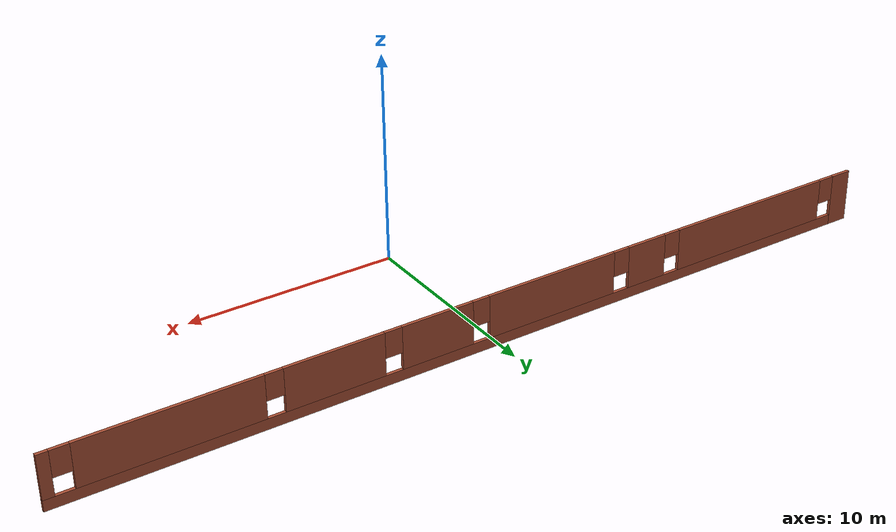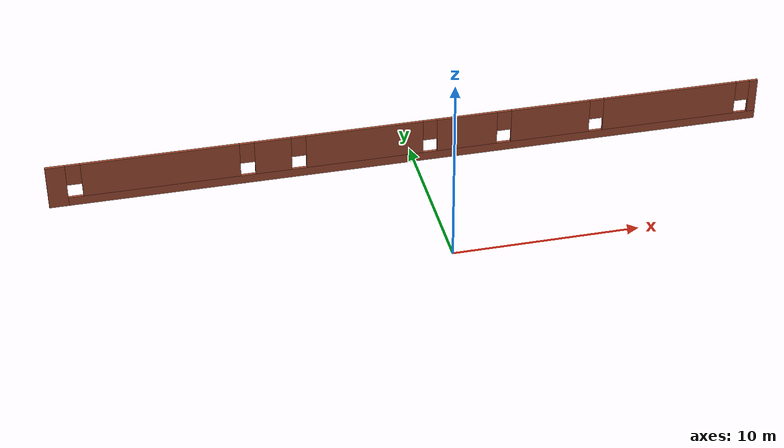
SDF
<sdf version="1.6">
 <model name="mybuilding">
  <link name="Wall_45">
   <pose>0.001293 8.80756 0 0 -0 0</pose>
   <visual name="Wall_45_Visual_11">
    <pose>-6.39577 0 1.9 0 -0 0</pose>
    <geometry><box><size>0.8 0.15 1.2</size></box></geometry>
    <material>
     <script><uri>file://media/materials/scripts/gazebo.material</uri><name>Gazebo/Bricks</name></script>
     <ambient>1 1 1 1</ambient>
     <shader type="pixel"/>
     <diffuse>1 1 1 1</diffuse>
     <specular>0.2 0.2 0.2 1</specular>
     <emissive>0 0 0 1</emissive>
    </material>
    <meta><layer>0</layer></meta>
   </visual>
   <visual name="Wall_45_Visual_0">
    <pose>-19.352 0 1.25 0 -0 0</pose>
    <geometry><box><size>1.04606 0.15 2.5</size></box></geometry>
    <material>
     <script><uri>file://media/materials/scripts/gazebo.material</uri><name>Gazebo/Bricks</name></script>
     <ambient>1 1 1 1</ambient>
     <shader type="pixel"/>
     <diffuse>1 1 1 1</diffuse>
     <specular>0.2 0.2 0.2 1</specular>
     <emissive>0 0 0 1</emissive>
    </material>
    <meta><layer>0</layer></meta>
   </visual>
   <visual name="Wall_45_Visual_1">
    <pose>0.523032 0 0.25 0 -0 0</pose>
    <geometry><box><size>38.7039 0.15 0.5</size></box></geometry>
    <material>
     <script><uri>file://media/materials/scripts/gazebo.material</uri><name>Gazebo/Bricks</name></script>
     <ambient>1 1 1 1</ambient>
     <shader type="pixel"/>
     <diffuse>1 1 1 1</diffuse>
     <specular>0.2 0.2 0.2 1</specular>
     <emissive>0 0 0 1</emissive>
    </material>
    <meta><layer>0</layer></meta>
   </visual>
   <visual name="Wall_45_Visual_2">
    <pose>-13.8116 0 1.5 0 -0 0</pose>
    <geometry><box><size>8.43475 0.15 2</size></box></geometry>
    <material>
     <script><uri>file://media/materials/scripts/gazebo.material</uri><name>Gazebo/Bricks</name></script>
     <ambient>1 1 1 1</ambient>
     <shader type="pixel"/>
     <diffuse>1 1 1 1</diffuse>
     <specular>0.2 0.2 0.2 1</specular>
     <emissive>0 0 0 1</emissive>
    </material>
    <meta><layer>0</layer></meta>
   </visual>
   <visual name="Wall_45_Visual_3">
    <pose>-7.79498 0 1.5 0 -0 0</pose>
    <geometry><box><size>1.99841 0.15 2</size></box></geometry>
    <material>
     <script><uri>file://media/materials/scripts/gazebo.material</uri><name>Gazebo/Bricks</name></script>
     <ambient>1 1 1 1</ambient>
     <shader type="pixel"/>
     <diffuse>1 1 1 1</diffuse>
     <specular>0.2 0.2 0.2 1</specular>
     <emissive>0 0 0 1</emissive>
    </material>
    <meta><layer>0</layer></meta>
   </visual>
   <visual name="Wall_45_Visual_4">
    <pose>-2.75784 0 1.5 0 -0 0</pose>
    <geometry><box><size>6.47587 0.15 2</size></box></geometry>
    <material>
     <script><uri>file://media/materials/scripts/gazebo.material</uri><name>Gazebo/Bricks</name></script>
     <ambient>1 1 1 1</ambient>
     <shader type="pixel"/>
     <diffuse>1 1 1 1</diffuse>
     <specular>0.2 0.2 0.2 1</specular>
     <emissive>0 0 0 1</emissive>
    </material>
    <meta><layer>0</layer></meta>
   </visual>
   <visual name="Wall_45_Visual_5">
    <pose>2.9789 0 1.5 0 -0 0</pose>
    <geometry><box><size>3.39762 0.15 2</size></box></geometry>
    <material>
     <script><uri>file://media/materials/scripts/gazebo.material</uri><name>Gazebo/Bricks</name></script>
     <ambient>1 1 1 1</ambient>
     <shader type="pixel"/>
     <diffuse>1 1 1 1</diffuse>
     <specular>0.2 0.2 0.2 1</specular>
     <emissive>0 0 0 1</emissive>
    </material>
    <meta><layer>0</layer></meta>
   </visual>
   <visual name="Wall_45_Visual_6">
    <pose>7.7362 0 1.5 0 -0 0</pose>
    <geometry><box><size>4.51698 0.15 2</size></box></geometry>
    <material>
     <script><uri>file://media/materials/scripts/gazebo.material</uri><name>Gazebo/Bricks</name></script>
     <ambient>1 1 1 1</ambient>
     <shader type="pixel"/>
     <diffuse>1 1 1 1</diffuse>
     <specular>0.2 0.2 0.2 1</specular>
     <emissive>0 0 0 1</emissive>
    </material>
    <meta><layer>0</layer></meta>
   </visual>
   <visual name="Wall_45_Visual_7">
    <pose>14.6891 0 1.5 0 -0 0</pose>
    <geometry><box><size>7.78879 0.15 2</size></box></geometry>
    <material>
     <script><uri>file://media/materials/scripts/gazebo.material</uri><name>Gazebo/Bricks</name></script>
     <ambient>1 1 1 1</ambient>
     <shader type="pixel"/>
     <diffuse>1 1 1 1</diffuse>
     <specular>0.2 0.2 0.2 1</specular>
     <emissive>0 0 0 1</emissive>
    </material>
    <meta><layer>0</layer></meta>
   </visual>
   <visual name="Wall_45_Visual_8">
    <pose>19.6292 0 1.5 0 -0 0</pose>
    <geometry><box><size>0.491526 0.15 2</size></box></geometry>
    <material>
     <script><uri>file://media/materials/scripts/gazebo.material</uri><name>Gazebo/Bricks</name></script>
     <ambient>1 1 1 1</ambient>
     <shader type="pixel"/>
     <diffuse>1 1 1 1</diffuse>
     <specular>0.2 0.2 0.2 1</specular>
     <emissive>0 0 0 1</emissive>
    </material>
    <meta><layer>0</layer></meta>
   </visual>
   <visual name="Wall_45_Visual_9">
    <pose>-18.4289 0 1.9 0 -0 0</pose>
    <geometry><box><size>0.8 0.15 1.2</size></box></geometry>
    <material>
     <script><uri>file://media/materials/scripts/gazebo.material</uri><name>Gazebo/Bricks</name></script>
     <ambient>1 1 1 1</ambient>
     <shader type="pixel"/>
     <diffuse>1 1 1 1</diffuse>
     <specular>0.2 0.2 0.2 1</specular>
     <emissive>0 0 0 1</emissive>
    </material>
    <meta><layer>0</layer></meta>
   </visual>
   <visual name="Wall_45_Visual_10">
    <pose>-9.19418 0 1.9 0 -0 0</pose>
    <geometry><box><size>0.8 0.15 1.2</size></box></geometry>
    <material>
     <script><uri>file://media/materials/scripts/gazebo.material</uri><name>Gazebo/Bricks</name></script>
     <ambient>1 1 1 1</ambient>
     <shader type="pixel"/>
     <diffuse>1 1 1 1</diffuse>
     <specular>0.2 0.2 0.2 1</specular>
     <emissive>0 0 0 1</emissive>
    </material>
    <meta><layer>0</layer></meta>
   </visual>
   <visual name="Wall_45_Visual_12">
    <pose>0.880093 0 1.9 0 -0 0</pose>
    <geometry><box><size>0.8 0.15 1.2</size></box></geometry>
    <material>
     <script><uri>file://media/materials/scripts/gazebo.material</uri><name>Gazebo/Bricks</name></script>
     <ambient>1 1 1 1</ambient>
     <shader type="pixel"/>
     <diffuse>1 1 1 1</diffuse>
     <specular>0.2 0.2 0.2 1</specular>
     <emissive>0 0 0 1</emissive>
    </material>
    <meta><layer>0</layer></meta>
   </visual>
   <visual name="Wall_45_Visual_13">
    <pose>5.07771 0 1.9 0 -0 0</pose>
    <geometry><box><size>0.8 0.15 1.2</size></box></geometry>
    <material>
     <script><uri>file://media/materials/scripts/gazebo.material</uri><name>Gazebo/Bricks</name></script>
     <ambient>1 1 1 1</ambient>
     <shader type="pixel"/>
     <diffuse>1 1 1 1</diffuse>
     <specular>0.2 0.2 0.2 1</specular>
     <emissive>0 0 0 1</emissive>
    </material>
    <meta><layer>0</layer></meta>
   </visual>
   <visual name="Wall_45_Visual_14">
    <pose>10.3947 0 1.9 0 -0 0</pose>
    <geometry><box><size>0.8 0.15 1.2</size></box></geometry>
    <material>
     <script><uri>file://media/materials/scripts/gazebo.material</uri><name>Gazebo/Bricks</name></script>
     <ambient>1 1 1 1</ambient>
     <shader type="pixel"/>
     <diffuse>1 1 1 1</diffuse>
     <specular>0.2 0.2 0.2 1</specular>
     <emissive>0 0 0 1</emissive>
    </material>
    <meta><layer>0</layer></meta>
   </visual>
   <visual name="Wall_45_Visual_15">
    <pose>18.9835 0 1.9 0 -0 0</pose>
    <geometry><box><size>0.8 0.15 1.2</size></box></geometry>
    <material>
     <script><uri>file://media/materials/scripts/gazebo.material</uri><name>Gazebo/Bricks</name></script>
     <ambient>1 1 1 1</ambient>
     <shader type="pixel"/>
     <diffuse>1 1 1 1</diffuse>
     <specular>0.2 0.2 0.2 1</specular>
     <emissive>0 0 0 1</emissive>
    </material>
    <meta><layer>0</layer></meta>
   </visual>
   <collision name="Wall_45_Collision_0">
    <pose>-19.352 0 1.25 0 -0 0</pose>
    <geometry><box><size>1.04606 0.15 2.5</size></box></geometry>
    <surface>
     <friction>
      <ode><mu>1</mu><mu2>1</mu2><fdir1>0 0 0</fdir1><slip1>0</slip1><slip2>0</slip2></ode>
      <torsional>
       <coefficient>1</coefficient>
       <patch_radius>0</patch_radius>
       <surface_radius>0</surface_radius>
       <use_patch_radius>1</use_patch_radius>
       <ode><slip>0</slip></ode>
      </torsional>
     </friction>
     <bounce><restitution_coefficient>0</restitution_coefficient><threshold>1e+06</threshold></bounce>
     <contact>
      <collide_without_contact>0</collide_without_contact>
      <collide_without_contact_bitmask>1</collide_without_contact_bitmask>
      <collide_bitmask>1</collide_bitmask>
      <ode>
       <soft_cfm>0</soft_cfm>
       <soft_erp>0.2</soft_erp>
       <kp>1e+13</kp>
       <kd>1</kd>
       <max_vel>0.01</max_vel>
       <min_depth>0</min_depth>
      </ode>
      <bullet>
       <split_impulse>1</split_impulse>
       <split_impulse_penetration_threshold>-0.01</split_impulse_penetration_threshold>
       <soft_cfm>0</soft_cfm>
       <soft_erp>0.2</soft_erp>
       <kp>1e+13</kp>
       <kd>1</kd>
      </bullet>
     </contact>
    </surface>
   </collision>
   <collision name="Wall_45_Collision_1">
    <pose>0.523032 0 0.25 0 -0 0</pose>
    <geometry><box><size>38.7039 0.15 0.5</size></box></geometry>
    <surface>
     <friction>
      <ode><mu>1</mu><mu2>1</mu2><fdir1>0 0 0</fdir1><slip1>0</slip1><slip2>0</slip2></ode>
      <torsional>
       <coefficient>1</coefficient>
       <patch_radius>0</patch_radius>
       <surface_radius>0</surface_radius>
       <use_patch_radius>1</use_patch_radius>
       <ode><slip>0</slip></ode>
      </torsional>
     </friction>
     <bounce><restitution_coefficient>0</restitution_coefficient><threshold>1e+06</threshold></bounce>
     <contact>
      <collide_without_contact>0</collide_without_contact>
      <collide_without_contact_bitmask>1</collide_without_contact_bitmask>
      <collide_bitmask>1</collide_bitmask>
      <ode>
       <soft_cfm>0</soft_cfm>
       <soft_erp>0.2</soft_erp>
       <kp>1e+13</kp>
       <kd>1</kd>
       <max_vel>0.01</max_vel>
       <min_depth>0</min_depth>
      </ode>
      <bullet>
       <split_impulse>1</split_impulse>
       <split_impulse_penetration_threshold>-0.01</split_impulse_penetration_threshold>
       <soft_cfm>0</soft_cfm>
       <soft_erp>0.2</soft_erp>
       <kp>1e+13</kp>
       <kd>1</kd>
      </bullet>
     </contact>
    </surface>
   </collision>
   <collision name="Wall_45_Collision_2">
    <pose>-13.8116 0 1.5 0 -0 0</pose>
    <geometry><box><size>8.43475 0.15 2</size></box></geometry>
    <surface>
     <friction>
      <ode><mu>1</mu><mu2>1</mu2><fdir1>0 0 0</fdir1><slip1>0</slip1><slip2>0</slip2></ode>
      <torsional>
       <coefficient>1</coefficient>
       <patch_radius>0</patch_radius>
       <surface_radius>0</surface_radius>
       <use_patch_radius>1</use_patch_radius>
       <ode><slip>0</slip></ode>
      </torsional>
     </friction>
     <bounce><restitution_coefficient>0</restitution_coefficient><threshold>1e+06</threshold></bounce>
     <contact>
      <collide_without_contact>0</collide_without_contact>
      <collide_without_contact_bitmask>1</collide_without_contact_bitmask>
      <collide_bitmask>1</collide_bitmask>
      <ode>
       <soft_cfm>0</soft_cfm>
       <soft_erp>0.2</soft_erp>
       <kp>1e+13</kp>
       <kd>1</kd>
       <max_vel>0.01</max_vel>
       <min_depth>0</min_depth>
      </ode>
      <bullet>
       <split_impulse>1</split_impulse>
       <split_impulse_penetration_threshold>-0.01</split_impulse_penetration_threshold>
       <soft_cfm>0</soft_cfm>
       <soft_erp>0.2</soft_erp>
       <kp>1e+13</kp>
       <kd>1</kd>
      </bullet>
     </contact>
    </surface>
   </collision>
   <collision name="Wall_45_Collision_4">
    <pose>-2.75784 0 1.5 0 -0 0</pose>
    <geometry><box><size>6.47587 0.15 2</size></box></geometry>
    <surface>
     <friction>
      <ode><mu>1</mu><mu2>1</mu2><fdir1>0 0 0</fdir1><slip1>0</slip1><slip2>0</slip2></ode>
      <torsional>
       <coefficient>1</coefficient>
       <patch_radius>0</patch_radius>
       <surface_radius>0</surface_radius>
       <use_patch_radius>1</use_patch_radius>
       <ode><slip>0</slip></ode>
      </torsional>
     </friction>
     <bounce><restitution_coefficient>0</restitution_coefficient><threshold>1e+06</threshold></bounce>
     <contact>
      <collide_without_contact>0</collide_without_contact>
      <collide_without_contact_bitmask>1</collide_without_contact_bitmask>
      <collide_bitmask>1</collide_bitmask>
      <ode>
       <soft_cfm>0</soft_cfm>
       <soft_erp>0.2</soft_erp>
       <kp>1e+13</kp>
       <kd>1</kd>
       <max_vel>0.01</max_vel>
       <min_depth>0</min_depth>
      </ode>
      <bullet>
       <split_impulse>1</split_impulse>
       <split_impulse_penetration_threshold>-0.01</split_impulse_penetration_threshold>
       <soft_cfm>0</soft_cfm>
       <soft_erp>0.2</soft_erp>
       <kp>1e+13</kp>
       <kd>1</kd>
      </bullet>
     </contact>
    </surface>
   </collision>
   <collision name="Wall_45_Collision_3">
    <pose>-7.79498 0 1.5 0 -0 0</pose>
    <geometry><box><size>1.99841 0.15 2</size></box></geometry>
    <surface>
     <friction>
      <ode><mu>1</mu><mu2>1</mu2><fdir1>0 0 0</fdir1><slip1>0</slip1><slip2>0</slip2></ode>
      <torsional>
       <coefficient>1</coefficient>
       <patch_radius>0</patch_radius>
       <surface_radius>0</surface_radius>
       <use_patch_radius>1</use_patch_radius>
       <ode><slip>0</slip></ode>
      </torsional>
     </friction>
     <bounce><restitution_coefficient>0</restitution_coefficient><threshold>1e+06</threshold></bounce>
     <contact>
      <collide_without_contact>0</collide_without_contact>
      <collide_without_contact_bitmask>1</collide_without_contact_bitmask>
      <collide_bitmask>1</collide_bitmask>
      <ode>
       <soft_cfm>0</soft_cfm>
       <soft_erp>0.2</soft_erp>
       <kp>1e+13</kp>
       <kd>1</kd>
       <max_vel>0.01</max_vel>
       <min_depth>0</min_depth>
      </ode>
      <bullet>
       <split_impulse>1</split_impulse>
       <split_impulse_penetration_threshold>-0.01</split_impulse_penetration_threshold>
       <soft_cfm>0</soft_cfm>
       <soft_erp>0.2</soft_erp>
       <kp>1e+13</kp>
       <kd>1</kd>
      </bullet>
     </contact>
    </surface>
   </collision>
   <collision name="Wall_45_Collision_5">
    <pose>2.9789 0 1.5 0 -0 0</pose>
    <geometry><box><size>3.39762 0.15 2</size></box></geometry>
    <surface>
     <friction>
      <ode><mu>1</mu><mu2>1</mu2><fdir1>0 0 0</fdir1><slip1>0</slip1><slip2>0</slip2></ode>
      <torsional>
       <coefficient>1</coefficient>
       <patch_radius>0</patch_radius>
       <surface_radius>0</surface_radius>
       <use_patch_radius>1</use_patch_radius>
       <ode><slip>0</slip></ode>
      </torsional>
     </friction>
     <bounce><restitution_coefficient>0</restitution_coefficient><threshold>1e+06</threshold></bounce>
     <contact>
      <collide_without_contact>0</collide_without_contact>
      <collide_without_contact_bitmask>1</collide_without_contact_bitmask>
      <collide_bitmask>1</collide_bitmask>
      <ode>
       <soft_cfm>0</soft_cfm>
       <soft_erp>0.2</soft_erp>
       <kp>1e+13</kp>
       <kd>1</kd>
       <max_vel>0.01</max_vel>
       <min_depth>0</min_depth>
      </ode>
      <bullet>
       <split_impulse>1</split_impulse>
       <split_impulse_penetration_threshold>-0.01</split_impulse_penetration_threshold>
       <soft_cfm>0</soft_cfm>
       <soft_erp>0.2</soft_erp>
       <kp>1e+13</kp>
       <kd>1</kd>
      </bullet>
     </contact>
    </surface>
   </collision>
   <collision name="Wall_45_Collision_6">
    <pose>7.7362 0 1.5 0 -0 0</pose>
    <geometry><box><size>4.51698 0.15 2</size></box></geometry>
    <surface>
     <friction>
      <ode><mu>1</mu><mu2>1</mu2><fdir1>0 0 0</fdir1><slip1>0</slip1><slip2>0</slip2></ode>
      <torsional>
       <coefficient>1</coefficient>
       <patch_radius>0</patch_radius>
       <surface_radius>0</surface_radius>
       <use_patch_radius>1</use_patch_radius>
       <ode><slip>0</slip></ode>
      </torsional>
     </friction>
     <bounce><restitution_coefficient>0</restitution_coefficient><threshold>1e+06</threshold></bounce>
     <contact>
      <collide_without_contact>0</collide_without_contact>
      <collide_without_contact_bitmask>1</collide_without_contact_bitmask>
      <collide_bitmask>1</collide_bitmask>
      <ode>
       <soft_cfm>0</soft_cfm>
       <soft_erp>0.2</soft_erp>
       <kp>1e+13</kp>
       <kd>1</kd>
       <max_vel>0.01</max_vel>
       <min_depth>0</min_depth>
      </ode>
      <bullet>
       <split_impulse>1</split_impulse>
       <split_impulse_penetration_threshold>-0.01</split_impulse_penetration_threshold>
       <soft_cfm>0</soft_cfm>
       <soft_erp>0.2</soft_erp>
       <kp>1e+13</kp>
       <kd>1</kd>
      </bullet>
     </contact>
    </surface>
   </collision>
   <collision name="Wall_45_Collision_8">
    <pose>19.6292 0 1.5 0 -0 0</pose>
    <geometry><box><size>0.491526 0.15 2</size></box></geometry>
    <surface>
     <friction>
      <ode><mu>1</mu><mu2>1</mu2><fdir1>0 0 0</fdir1><slip1>0</slip1><slip2>0</slip2></ode>
      <torsional>
       <coefficient>1</coefficient>
       <patch_radius>0</patch_radius>
       <surface_radius>0</surface_radius>
       <use_patch_radius>1</use_patch_radius>
       <ode><slip>0</slip></ode>
      </torsional>
     </friction>
     <bounce><restitution_coefficient>0</restitution_coefficient><threshold>1e+06</threshold></bounce>
     <contact>
      <collide_without_contact>0</collide_without_contact>
      <collide_without_contact_bitmask>1</collide_without_contact_bitmask>
      <collide_bitmask>1</collide_bitmask>
      <ode>
       <soft_cfm>0</soft_cfm>
       <soft_erp>0.2</soft_erp>
       <kp>1e+13</kp>
       <kd>1</kd>
       <max_vel>0.01</max_vel>
       <min_depth>0</min_depth>
      </ode>
      <bullet>
       <split_impulse>1</split_impulse>
       <split_impulse_penetration_threshold>-0.01</split_impulse_penetration_threshold>
       <soft_cfm>0</soft_cfm>
       <soft_erp>0.2</soft_erp>
       <kp>1e+13</kp>
       <kd>1</kd>
      </bullet>
     </contact>
    </surface>
   </collision>
   <collision name="Wall_45_Collision_7">
    <pose>14.6891 0 1.5 0 -0 0</pose>
    <geometry><box><size>7.78879 0.15 2</size></box></geometry>
    <surface>
     <friction>
      <ode><mu>1</mu><mu2>1</mu2><fdir1>0 0 0</fdir1><slip1>0</slip1><slip2>0</slip2></ode>
      <torsional>
       <coefficient>1</coefficient>
       <patch_radius>0</patch_radius>
       <surface_radius>0</surface_radius>
       <use_patch_radius>1</use_patch_radius>
       <ode><slip>0</slip></ode>
      </torsional>
     </friction>
     <bounce><restitution_coefficient>0</restitution_coefficient><threshold>1e+06</threshold></bounce>
     <contact>
      <collide_without_contact>0</collide_without_contact>
      <collide_without_contact_bitmask>1</collide_without_contact_bitmask>
      <collide_bitmask>1</collide_bitmask>
      <ode>
       <soft_cfm>0</soft_cfm>
       <soft_erp>0.2</soft_erp>
       <kp>1e+13</kp>
       <kd>1</kd>
       <max_vel>0.01</max_vel>
       <min_depth>0</min_depth>
      </ode>
      <bullet>
       <split_impulse>1</split_impulse>
       <split_impulse_penetration_threshold>-0.01</split_impulse_penetration_threshold>
       <soft_cfm>0</soft_cfm>
       <soft_erp>0.2</soft_erp>
       <kp>1e+13</kp>
       <kd>1</kd>
      </bullet>
     </contact>
    </surface>
   </collision>
   <collision name="Wall_45_Collision_9">
    <pose>-18.4289 0 1.9 0 -0 0</pose>
    <geometry><box><size>0.8 0.15 1.2</size></box></geometry>
    <surface>
     <friction>
      <ode><mu>1</mu><mu2>1</mu2><fdir1>0 0 0</fdir1><slip1>0</slip1><slip2>0</slip2></ode>
      <torsional>
       <coefficient>1</coefficient>
       <patch_radius>0</patch_radius>
       <surface_radius>0</surface_radius>
       <use_patch_radius>1</use_patch_radius>
       <ode><slip>0</slip></ode>
      </torsional>
     </friction>
     <bounce><restitution_coefficient>0</restitution_coefficient><threshold>1e+06</threshold></bounce>
     <contact>
      <collide_without_contact>0</collide_without_contact>
      <collide_without_contact_bitmask>1</collide_without_contact_bitmask>
      <collide_bitmask>1</collide_bitmask>
      <ode>
       <soft_cfm>0</soft_cfm>
       <soft_erp>0.2</soft_erp>
       <kp>1e+13</kp>
       <kd>1</kd>
       <max_vel>0.01</max_vel>
       <min_depth>0</min_depth>
      </ode>
      <bullet>
       <split_impulse>1</split_impulse>
       <split_impulse_penetration_threshold>-0.01</split_impulse_penetration_threshold>
       <soft_cfm>0</soft_cfm>
       <soft_erp>0.2</soft_erp>
       <kp>1e+13</kp>
       <kd>1</kd>
      </bullet>
     </contact>
    </surface>
   </collision>
   <collision name="Wall_45_Collision_10">
    <pose>-9.19418 0 1.9 0 -0 0</pose>
    <geometry><box><size>0.8 0.15 1.2</size></box></geometry>
    <surface>
     <friction>
      <ode><mu>1</mu><mu2>1</mu2><fdir1>0 0 0</fdir1><slip1>0</slip1><slip2>0</slip2></ode>
      <torsional>
       <coefficient>1</coefficient>
       <patch_radius>0</patch_radius>
       <surface_radius>0</surface_radius>
       <use_patch_radius>1</use_patch_radius>
       <ode><slip>0</slip></ode>
      </torsional>
     </friction>
     <bounce><restitution_coefficient>0</restitution_coefficient><threshold>1e+06</threshold></bounce>
     <contact>
      <collide_without_contact>0</collide_without_contact>
      <collide_without_contact_bitmask>1</collide_without_contact_bitmask>
      <collide_bitmask>1</collide_bitmask>
      <ode>
       <soft_cfm>0</soft_cfm>
       <soft_erp>0.2</soft_erp>
       <kp>1e+13</kp>
       <kd>1</kd>
       <max_vel>0.01</max_vel>
       <min_depth>0</min_depth>
      </ode>
      <bullet>
       <split_impulse>1</split_impulse>
       <split_impulse_penetration_threshold>-0.01</split_impulse_penetration_threshold>
       <soft_cfm>0</soft_cfm>
       <soft_erp>0.2</soft_erp>
       <kp>1e+13</kp>
       <kd>1</kd>
      </bullet>
     </contact>
    </surface>
   </collision>
   <collision name="Wall_45_Collision_11">
    <pose>-6.39577 0 1.9 0 -0 0</pose>
    <geometry><box><size>0.8 0.15 1.2</size></box></geometry>
    <surface>
     <friction>
      <ode><mu>1</mu><mu2>1</mu2><fdir1>0 0 0</fdir1><slip1>0</slip1><slip2>0</slip2></ode>
      <torsional>
       <coefficient>1</coefficient>
       <patch_radius>0</patch_radius>
       <surface_radius>0</surface_radius>
       <use_patch_radius>1</use_patch_radius>
       <ode><slip>0</slip></ode>
      </torsional>
     </friction>
     <bounce><restitution_coefficient>0</restitution_coefficient><threshold>1e+06</threshold></bounce>
     <contact>
      <collide_without_contact>0</collide_without_contact>
      <collide_without_contact_bitmask>1</collide_without_contact_bitmask>
      <collide_bitmask>1</collide_bitmask>
      <ode>
       <soft_cfm>0</soft_cfm>
       <soft_erp>0.2</soft_erp>
       <kp>1e+13</kp>
       <kd>1</kd>
       <max_vel>0.01</max_vel>
       <min_depth>0</min_depth>
      </ode>
      <bullet>
       <split_impulse>1</split_impulse>
       <split_impulse_penetration_threshold>-0.01</split_impulse_penetration_threshold>
       <soft_cfm>0</soft_cfm>
       <soft_erp>0.2</soft_erp>
       <kp>1e+13</kp>
       <kd>1</kd>
      </bullet>
     </contact>
    </surface>
   </collision>
   <collision name="Wall_45_Collision_13">
    <pose>5.07771 0 1.9 0 -0 0</pose>
    <geometry><box><size>0.8 0.15 1.2</size></box></geometry>
    <surface>
     <friction>
      <ode><mu>1</mu><mu2>1</mu2><fdir1>0 0 0</fdir1><slip1>0</slip1><slip2>0</slip2></ode>
      <torsional>
       <coefficient>1</coefficient>
       <patch_radius>0</patch_radius>
       <surface_radius>0</surface_radius>
       <use_patch_radius>1</use_patch_radius>
       <ode><slip>0</slip></ode>
      </torsional>
     </friction>
     <bounce><restitution_coefficient>0</restitution_coefficient><threshold>1e+06</threshold></bounce>
     <contact>
      <collide_without_contact>0</collide_without_contact>
      <collide_without_contact_bitmask>1</collide_without_contact_bitmask>
      <collide_bitmask>1</collide_bitmask>
      <ode>
       <soft_cfm>0</soft_cfm>
       <soft_erp>0.2</soft_erp>
       <kp>1e+13</kp>
       <kd>1</kd>
       <max_vel>0.01</max_vel>
       <min_depth>0</min_depth>
      </ode>
      <bullet>
       <split_impulse>1</split_impulse>
       <split_impulse_penetration_threshold>-0.01</split_impulse_penetration_threshold>
       <soft_cfm>0</soft_cfm>
       <soft_erp>0.2</soft_erp>
       <kp>1e+13</kp>
       <kd>1</kd>
      </bullet>
     </contact>
    </surface>
   </collision>
   <collision name="Wall_45_Collision_12">
    <pose>0.880093 0 1.9 0 -0 0</pose>
    <geometry><box><size>0.8 0.15 1.2</size></box></geometry>
    <surface>
     <friction>
      <ode><mu>1</mu><mu2>1</mu2><fdir1>0 0 0</fdir1><slip1>0</slip1><slip2>0</slip2></ode>
      <torsional>
       <coefficient>1</coefficient>
       <patch_radius>0</patch_radius>
       <surface_radius>0</surface_radius>
       <use_patch_radius>1</use_patch_radius>
       <ode><slip>0</slip></ode>
      </torsional>
     </friction>
     <bounce><restitution_coefficient>0</restitution_coefficient><threshold>1e+06</threshold></bounce>
     <contact>
      <collide_without_contact>0</collide_without_contact>
      <collide_without_contact_bitmask>1</collide_without_contact_bitmask>
      <collide_bitmask>1</collide_bitmask>
      <ode>
       <soft_cfm>0</soft_cfm>
       <soft_erp>0.2</soft_erp>
       <kp>1e+13</kp>
       <kd>1</kd>
       <max_vel>0.01</max_vel>
       <min_depth>0</min_depth>
      </ode>
      <bullet>
       <split_impulse>1</split_impulse>
       <split_impulse_penetration_threshold>-0.01</split_impulse_penetration_threshold>
       <soft_cfm>0</soft_cfm>
       <soft_erp>0.2</soft_erp>
       <kp>1e+13</kp>
       <kd>1</kd>
      </bullet>
     </contact>
    </surface>
   </collision>
   <collision name="Wall_45_Collision_14">
    <pose>10.3947 0 1.9 0 -0 0</pose>
    <geometry><box><size>0.8 0.15 1.2</size></box></geometry>
    <surface>
     <friction>
      <ode><mu>1</mu><mu2>1</mu2><fdir1>0 0 0</fdir1><slip1>0</slip1><slip2>0</slip2></ode>
      <torsional>
       <coefficient>1</coefficient>
       <patch_radius>0</patch_radius>
       <surface_radius>0</surface_radius>
       <use_patch_radius>1</use_patch_radius>
       <ode><slip>0</slip></ode>
      </torsional>
     </friction>
     <bounce><restitution_coefficient>0</restitution_coefficient><threshold>1e+06</threshold></bounce>
     <contact>
      <collide_without_contact>0</collide_without_contact>
      <collide_without_contact_bitmask>1</collide_without_contact_bitmask>
      <collide_bitmask>1</collide_bitmask>
      <ode>
       <soft_cfm>0</soft_cfm>
       <soft_erp>0.2</soft_erp>
       <kp>1e+13</kp>
       <kd>1</kd>
       <max_vel>0.01</max_vel>
       <min_depth>0</min_depth>
      </ode>
      <bullet>
       <split_impulse>1</split_impulse>
       <split_impulse_penetration_threshold>-0.01</split_impulse_penetration_threshold>
       <soft_cfm>0</soft_cfm>
       <soft_erp>0.2</soft_erp>
       <kp>1e+13</kp>
       <kd>1</kd>
      </bullet>
     </contact>
    </surface>
   </collision>
   <collision name="Wall_45_Collision_15">
    <pose>18.9835 0 1.9 0 -0 0</pose>
    <geometry><box><size>0.8 0.15 1.2</size></box></geometry>
    <surface>
     <friction>
      <ode><mu>1</mu><mu2>1</mu2><fdir1>0 0 0</fdir1><slip1>0</slip1><slip2>0</slip2></ode>
      <torsional>
       <coefficient>1</coefficient>
       <patch_radius>0</patch_radius>
       <surface_radius>0</surface_radius>
       <use_patch_radius>1</use_patch_radius>
       <ode><slip>0</slip></ode>
      </torsional>
     </friction>
     <bounce><restitution_coefficient>0</restitution_coefficient><threshold>1e+06</threshold></bounce>
     <contact>
      <collide_without_contact>0</collide_without_contact>
      <collide_without_contact_bitmask>1</collide_without_contact_bitmask>
      <collide_bitmask>1</collide_bitmask>
      <ode>
       <soft_cfm>0</soft_cfm>
       <soft_erp>0.2</soft_erp>
       <kp>1e+13</kp>
       <kd>1</kd>
       <max_vel>0.01</max_vel>
       <min_depth>0</min_depth>
      </ode>
      <bullet>
       <split_impulse>1</split_impulse>
       <split_impulse_penetration_threshold>-0.01</split_impulse_penetration_threshold>
       <soft_cfm>0</soft_cfm>
       <soft_erp>0.2</soft_erp>
       <kp>1e+13</kp>
       <kd>1</kd>
      </bullet>
     </contact>
    </surface>
   </collision>
  </link>
  <static>1</static>
 </model>
</sdf>
